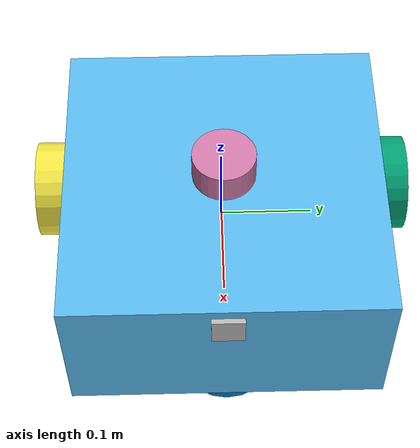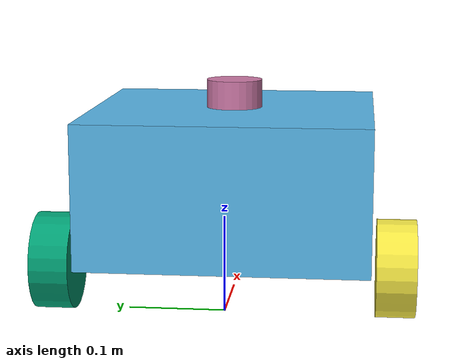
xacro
<?xml version="1.0"?>
<robot xmlns:xacro="http://www.ros.org/wiki/xacro" >

    <xacro:include filename="$(find rm_description)/urdf/inertial_macros.xacro"/>
    <xacro:include filename="$(find rm_description)/urdf/wheel.xacro"/>

    <!-- BASE_FOOTPRINT -->

    <link name="base_footprint">
    </link>

    <!-- BASE_LINK -->

    <joint name="base_link_joint" type="fixed">
        <parent link="base_footprint"/>
        <child link="base_link"/>
        <origin xyz="0 0 0.05" rpy="0 0 0"/>
    </joint>

    <link name="base_link">
        <visual>
            <origin xyz="0.1 0 0.075"/>
            <geometry>
                <box size="0.3 0.3 0.15"/>
            </geometry>
        </visual>
        <collision>
            <origin xyz="0.1 0 0.075"/>
            <geometry>
                <box size="0.3 0.3 0.15"/>
            </geometry>
        </collision>
        <xacro:inertial_box mass="0.5" x="0.3" y="0.3" z="0.15">
            <origin xyz="0.1 0 0.075" rpy="0 0 0"/>
        </xacro:inertial_box>
    </link>

    <!-- WHEELS -->

    <xacro:wheel prefix="left"  y_reflect="1"/>
    <xacro:wheel prefix="right" y_reflect="-1"/>

    <!-- CASTER WHEEL LINK -->

    <joint name="caster_wheel_joint" type="fixed">
        <parent link="base_link"/>
        <child link="caster_wheel"/>
        <origin xyz="0.2 0 0"/>
    </joint>

    <link name="caster_wheel">
        <visual>
            <geometry>
                <sphere radius="0.05"/>
            </geometry>
        </visual>
        <collision>
            <geometry>
                <sphere radius="0.05"/>
            </geometry>
        </collision>
        <xacro:inertial_sphere mass="0.1" radius="0.05">
            <origin xyz="0 0 0" rpy="0 0 0"/>
        </xacro:inertial_sphere>
    </link>

    <gazebo reference="caster_wheel">
        <mu1 value="0.001"/>
        <mu2 value="0.001"/>
    </gazebo>

    <!-- IMU -->
    <joint name="imu_joint" type="fixed">
        <parent link="base_link"/>
        <child link="imu"/>
        <origin xyz="0 0 0" rpy="0 0 0"/>
    </joint>

    <link name="imu">
    </link>

    <!-- Lidar -->
    <joint name="lidar_joint" type="fixed">
        <origin xyz="0.1 0 0.165" rpy="0 0 0"/>
        <parent link="base_link"/>
        <child link="lidar"/>
    </joint>

    <link name="lidar">
        <visual>
            <origin xyz="0 0 0" rpy="0 0 0"/>
            <geometry>
                <cylinder length="0.03" radius="0.03"/>
            </geometry>
        </visual>
        <collision>
            <origin xyz="0 0 0" rpy="0 0 0"/>
            <geometry>
                <cylinder length="0.03" radius="0.03"/>
            </geometry>
        </collision>
    </link>

    <!-- Camera -->
    <link name="camera">
        <visual>
            <origin xyz="0 0 0" rpy="0 0 0"/>
            <geometry>
                <box size="0.01 0.03 0.03"/>
            </geometry>
        </visual>
        <collision>
            <origin xyz="0 0 0" rpy="0 0 0"/>
            <geometry>
                <box size="0.01 0.03 0.03"/>
            </geometry>
        </collision>
    </link>
    <joint name="camera_joint" type="fixed">
        <origin xyz="0.25 0 0.125" rpy="0 0 0"/>
        <parent link="base_link"/>
        <child link="camera"/>
    </joint>

</robot>

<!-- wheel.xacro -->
<robot xmlns:xacro="http://www.ros.org/wiki/xacro">

    <xacro:macro name="wheel" params="prefix y_reflect">

        <joint name="${prefix}_wheel_joint" type="continuous">
            <parent link="base_link"/>
            <child link="${prefix}_wheel"/>
            <origin xyz="0 ${y_reflect * 0.175} 0" rpy="0 0 0"/>
            <axis xyz="0 1 0"/>
        </joint>

        <link name="${prefix}_wheel">
            <visual>
                <geometry>
                    <cylinder radius="0.05" length="0.04"/>
                </geometry>
                <origin xyz="0 0 0" rpy="${pi/2} 0 0"/>
            </visual>
            <collision>
                <geometry>
                    <cylinder radius="0.05" length="0.04"/>
                </geometry>
                <origin xyz="0 0 0" rpy="${pi/2} 0 0"/>
            </collision>
            <xacro:inertial_cylinder mass="0.1" length="0.04" radius="0.05">
                <origin xyz="0 0 0" rpy="${pi/2} 0 0"/>
            </xacro:inertial_cylinder>
        </link>

        <gazebo reference="${prefix}_wheel">
            <mu1 value="100000.0"/>
            <mu2 value="100000.0"/>
        </gazebo>

    </xacro:macro>

</robot>
